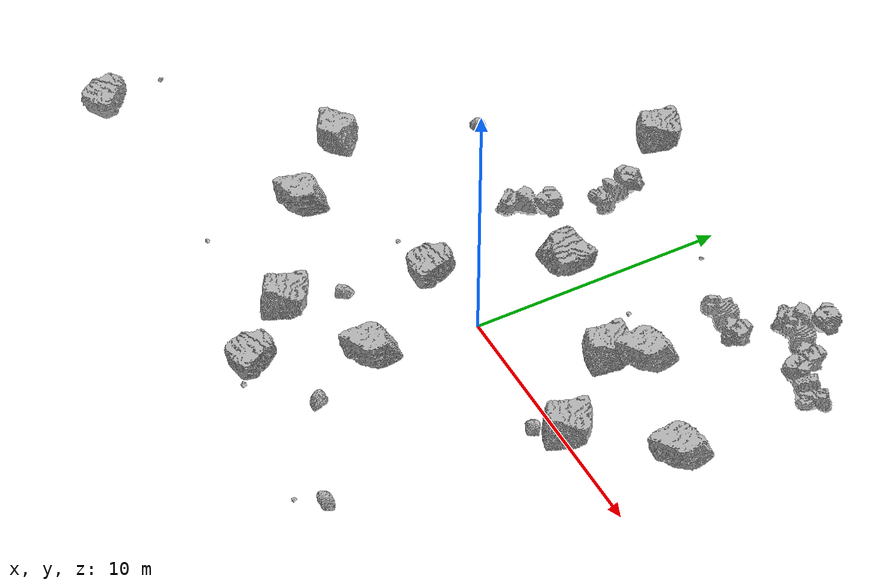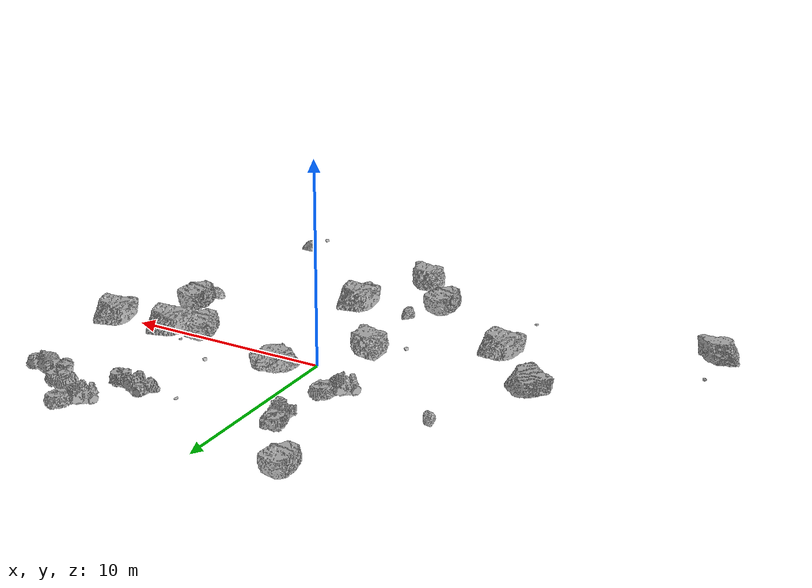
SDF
<sdf version="1.7">
 <world name="marsyard">
  <gravity>0 0 -9.81</gravity>
  <physics name="dart_physics" type="ignored">
   <max_step_size>0.003</max_step_size>
   <real_time_update_rate>333</real_time_update_rate>
   <real_time_factor>1.0</real_time_factor>
  </physics>
  <plugin filename="ignition-gazebo-physics-system" name="ignition::gazebo::systems::Physics"/>
  <plugin filename="ignition-gazebo-user-commands-system" name="ignition::gazebo::systems::UserCommands"/>
  <plugin filename="ignition-gazebo-scene-broadcaster-system" name="ignition::gazebo::systems::SceneBroadcaster"/>
  <plugin filename="ignition-gazebo-contact-system" name="ignition::gazebo::systems::Contact"/>
  <scene>
   <ambient>0.95 0.95 0.95 1</ambient>
   <background>0.70 0.70 0.70 1</background>
   <shadows>false</shadows>
  </scene>
  <light type="directional" name="sun">
   <cast_shadows>false</cast_shadows>
   <pose>0 0 30 0 0 0</pose>
   <diffuse>1 1 1 1</diffuse>
   <specular>0.15 0.15 0.15 1</specular>
   <direction>-0.35 0.1 -0.93</direction>
  </light>
  <model name="Rock_1">
   <static>true</static>
   <pose>0.4768 -4.6847 1.2409 0.0000 0.0000 2.4767</pose>
   <link name="link">
    <visual name="visual">
     <geometry><mesh><uri>package://rock_generator/rocks_ws/rock_1/meshes/rock_1.stl</uri></mesh></geometry>
    </visual>
   </link>
  </model>
  <model name="Rock_3">
   <static>true</static>
   <pose>1.9223 8.1948 1.3456 0.0000 0.0000 0.6590</pose>
   <link name="link">
    <visual name="visual">
     <geometry><mesh><uri>package://rock_generator/rocks_ws/rock_7/meshes/rock_7.stl</uri></mesh></geometry>
    </visual>
    <collision name="collision">
     <geometry><mesh><uri>package://rock_generator/rocks_ws/rock_7/meshes/rock_7.stl</uri></mesh></geometry>
    </collision>
   </link>
  </model>
  <model name="Rock_4">
   <static>true</static>
   <pose>1.4329 -7.1120 0.9479 0.0000 0.0000 2.9152</pose>
   <link name="link">
    <visual name="visual">
     <geometry><mesh><uri>package://rock_generator/rocks_ws/rock_3/meshes/rock_3.stl</uri></mesh></geometry>
    </visual>
    <collision name="collision">
     <geometry><mesh><uri>package://rock_generator/rocks_ws/rock_3/meshes/rock_3.stl</uri></mesh></geometry>
    </collision>
   </link>
  </model>
  <model name="Rock_6">
   <static>true</static>
   <pose>-0.2181 -9.1224 1.3719 0.0000 0.0000 -2.2296</pose>
   <link name="link">
    <visual name="visual">
     <geometry><mesh><uri>package://rock_generator/rocks_ws/rock_9/meshes/rock_9.stl</uri></mesh></geometry>
    </visual>
   </link>
  </model>
  <model name="Rock_7">
   <static>true</static>
   <pose>-2.7088 7.4044 1.1608 0.0000 0.0000 -1.2500</pose>
   <link name="link">
    <visual name="visual">
     <geometry><mesh><uri>package://rock_generator/rocks_ws/rock_2/meshes/rock_2.stl</uri></mesh></geometry>
    </visual>
    <collision name="collision">
     <geometry><mesh><uri>package://rock_generator/rocks_ws/rock_2/meshes/rock_2.stl</uri></mesh></geometry>
    </collision>
   </link>
  </model>
  <model name="Rock_9">
   <static>true</static>
   <pose>4.8801 7.4703 0.9232 0.0000 0.0000 3.0309</pose>
   <link name="link">
    <visual name="visual">
     <geometry><mesh><uri>package://rock_generator/rocks_ws/rock_2/meshes/rock_2.stl</uri></mesh></geometry>
    </visual>
   </link>
  </model>
  <model name="Rock_12">
   <static>true</static>
   <pose>-5.0294 10.6625 0.8152 0.0000 0.0000 0.4598</pose>
   <link name="link">
    <visual name="visual">
     <geometry><mesh><uri>package://rock_generator/rocks_ws/rock_1/meshes/rock_1.stl</uri></mesh></geometry>
    </visual>
    <collision name="collision">
     <geometry><mesh><uri>package://rock_generator/rocks_ws/rock_1/meshes/rock_1.stl</uri></mesh></geometry>
    </collision>
   </link>
  </model>
  <model name="Rock_16">
   <static>true</static>
   <pose>6.4309 -1.3958 1.5813 0.0000 0.0000 0.5819</pose>
   <link name="link">
    <visual name="visual">
     <geometry><mesh><uri>package://rock_generator/rocks_ws/rock_3/meshes/rock_3.stl</uri></mesh></geometry>
    </visual>
   </link>
  </model>
  <model name="Rock_17">
   <static>true</static>
   <pose>4.5118 2.6109 1.5480 0.0000 0.0000 0.5798</pose>
   <link name="link">
    <visual name="visual">
     <geometry><mesh><uri>package://rock_generator/rocks_ws/rock_1/meshes/rock_1.stl</uri></mesh></geometry>
    </visual>
    <collision name="collision">
     <geometry><mesh><uri>package://rock_generator/rocks_ws/rock_1/meshes/rock_1.stl</uri></mesh></geometry>
    </collision>
   </link>
  </model>
  <model name="Rock_19">
   <static>true</static>
   <pose>-2.3897 -4.1674 1.4174 0.0000 0.0000 -1.2123</pose>
   <link name="link">
    <visual name="visual">
     <geometry><mesh><uri>package://rock_generator/rocks_ws/rock_3/meshes/rock_3.stl</uri></mesh></geometry>
    </visual>
   </link>
  </model>
  <model name="Rock_22">
   <static>true</static>
   <pose>-8.3398 4.5760 1.1791 0.0000 0.0000 -0.2689</pose>
   <link name="link">
    <visual name="visual">
     <geometry><mesh><uri>package://rock_generator/rocks_ws/rock_3/meshes/rock_3.stl</uri></mesh></geometry>
    </visual>
    <collision name="collision">
     <geometry><mesh><uri>package://rock_generator/rocks_ws/rock_3/meshes/rock_3.stl</uri></mesh></geometry>
    </collision>
   </link>
  </model>
  <model name="Rock_25">
   <static>true</static>
   <pose>-2.1898 -0.7334 1.0219 0.0000 0.0000 -2.3976</pose>
   <link name="link">
    <visual name="visual">
     <geometry><mesh><uri>package://rock_generator/rocks_ws/rock_1/meshes/rock_1.stl</uri></mesh></geometry>
    </visual>
    <collision name="collision">
     <geometry><mesh><uri>package://rock_generator/rocks_ws/rock_1/meshes/rock_1.stl</uri></mesh></geometry>
    </collision>
   </link>
  </model>
  <model name="Rock_26">
   <static>true</static>
   <pose>5.5679 -9.9276 1.8166 0.0000 0.0000 0.4211</pose>
   <link name="link">
    <visual name="visual">
     <geometry><mesh><uri>package://rock_generator/rocks_ws/rock_9/meshes/rock_9.stl</uri></mesh></geometry>
    </visual>
    <collision name="collision">
     <geometry><mesh><uri>package://rock_generator/rocks_ws/rock_9/meshes/rock_9.stl</uri></mesh></geometry>
    </collision>
   </link>
  </model>
  <model name="Rock_27">
   <static>true</static>
   <pose>-7.8081 -3.4433 1.0914 0.0000 0.0000 2.2504</pose>
   <link name="link">
    <visual name="visual">
     <geometry><mesh><uri>package://rock_generator/rocks_ws/rock_1/meshes/rock_1.stl</uri></mesh></geometry>
    </visual>
    <collision name="collision">
     <geometry><mesh><uri>package://rock_generator/rocks_ws/rock_1/meshes/rock_1.stl</uri></mesh></geometry>
    </collision>
   </link>
  </model>
  <model name="Rock_30">
   <static>true</static>
   <pose>-0.1203 3.8290 1.4392 0.0000 0.0000 -0.7985</pose>
   <link name="link">
    <visual name="visual">
     <geometry><mesh><uri>package://rock_generator/rocks_ws/rock_1/meshes/rock_1.stl</uri></mesh></geometry>
    </visual>
    <collision name="collision">
     <geometry><mesh><uri>package://rock_generator/rocks_ws/rock_1/meshes/rock_1.stl</uri></mesh></geometry>
    </collision>
   </link>
  </model>
  <model name="Rock_31">
   <static>true</static>
   <pose>3.1348 4.3760 1.3899 0.0000 0.0000 0.2756</pose>
   <link name="link">
    <visual name="visual">
     <geometry><mesh><uri>package://rock_generator/rocks_ws/rock_9/meshes/rock_9.stl</uri></mesh></geometry>
    </visual>
    <collision name="collision">
     <geometry><mesh><uri>package://rock_generator/rocks_ws/rock_9/meshes/rock_9.stl</uri></mesh></geometry>
    </collision>
   </link>
  </model>
  <model name="Rock_32">
   <static>true</static>
   <pose>5.6975 3.3626 1.9316 0.0000 0.0000 2.5598</pose>
   <link name="link">
    <visual name="visual">
     <geometry><mesh><uri>package://rock_generator/rocks_ws/rock_1/meshes/rock_1.stl</uri></mesh></geometry>
    </visual>
    <collision name="collision">
     <geometry><mesh><uri>package://rock_generator/rocks_ws/rock_1/meshes/rock_1.stl</uri></mesh></geometry>
    </collision>
   </link>
  </model>
  <model name="Rock_34">
   <static>true</static>
   <pose>7.1700 9.1422 1.0060 0.0000 0.0000 2.8301</pose>
   <link name="link">
    <visual name="visual">
     <geometry><mesh><uri>package://rock_generator/rocks_ws/rock_2/meshes/rock_2.stl</uri></mesh></geometry>
    </visual>
   </link>
  </model>
  <model name="Rock_37">
   <static>true</static>
   <pose>-16.7717 -5.1917 1.1791 0.0000 0.0000 2.7179</pose>
   <link name="link">
    <visual name="visual">
     <geometry><mesh><uri>package://rock_generator/rocks_ws/rock_9/meshes/rock_9.stl</uri></mesh></geometry>
    </visual>
    <collision name="collision">
     <geometry><mesh><uri>package://rock_generator/rocks_ws/rock_9/meshes/rock_9.stl</uri></mesh></geometry>
    </collision>
   </link>
  </model>
  <model name="Rock_40">
   <static>true</static>
   <pose>4.5953 4.1322 1.9544 0.0000 0.0000 -1.5503</pose>
   <link name="link">
    <visual name="visual">
     <geometry><mesh><uri>package://rock_generator/rocks_ws/rock_7/meshes/rock_7.stl</uri></mesh></geometry>
    </visual>
    <collision name="collision">
     <geometry><mesh><uri>package://rock_generator/rocks_ws/rock_7/meshes/rock_7.stl</uri></mesh></geometry>
    </collision>
   </link>
  </model>
  <model name="Rock_41">
   <static>true</static>
   <pose>6.0540 -9.0231 1.5440 0.0000 0.0000 -2.1726</pose>
   <link name="link">
    <visual name="visual">
     <geometry><mesh><uri>package://rock_generator/rocks_ws/rock_3/meshes/rock_3.stl</uri></mesh></geometry>
    </visual>
    <collision name="collision">
     <geometry><mesh><uri>package://rock_generator/rocks_ws/rock_3/meshes/rock_3.stl</uri></mesh></geometry>
    </collision>
   </link>
  </model>
  <model name="Rock_43">
   <static>true</static>
   <pose>-3.3193 -6.0659 1.2158 0.0000 0.0000 0.3115</pose>
   <link name="link">
    <visual name="visual">
     <geometry><mesh><uri>package://rock_generator/rocks_ws/rock_1/meshes/rock_1.stl</uri></mesh></geometry>
    </visual>
    <collision name="collision">
     <geometry><mesh><uri>package://rock_generator/rocks_ws/rock_1/meshes/rock_1.stl</uri></mesh></geometry>
    </collision>
   </link>
  </model>
  <model name="Rock_44">
   <static>true</static>
   <pose>-7.6563 -7.2283 1.0274 0.0000 0.0000 -0.3936</pose>
   <link name="link">
    <visual name="visual">
     <geometry><mesh><uri>package://rock_generator/rocks_ws/rock_7/meshes/rock_7.stl</uri></mesh></geometry>
    </visual>
   </link>
  </model>
  <model name="Rock_45">
   <static>true</static>
   <pose>6.1671 10.0291 0.9648 0.0000 0.0000 -2.1048</pose>
   <link name="link">
    <visual name="visual">
     <geometry><mesh><uri>package://rock_generator/rocks_ws/rock_2/meshes/rock_2.stl</uri></mesh></geometry>
    </visual>
    <collision name="collision">
     <geometry><mesh><uri>package://rock_generator/rocks_ws/rock_2/meshes/rock_2.stl</uri></mesh></geometry>
    </collision>
   </link>
  </model>
  <model name="Rock_47">
   <static>true</static>
   <pose>-1.0073 -8.3970 1.2720 0.0000 0.0000 -2.2010</pose>
   <link name="link">
    <visual name="visual">
     <geometry><mesh><uri>package://rock_generator/rocks_ws/rock_1/meshes/rock_1.stl</uri></mesh></geometry>
    </visual>
    <collision name="collision">
     <geometry><mesh><uri>package://rock_generator/rocks_ws/rock_1/meshes/rock_1.stl</uri></mesh></geometry>
    </collision>
   </link>
  </model>
  <model name="Rock_51">
   <static>true</static>
   <pose>-16.3461 -7.6041 1.0972 0.0000 0.0000 -1.8606</pose>
   <link name="link">
    <visual name="visual">
     <geometry><mesh><uri>package://rock_generator/rocks_ws/rock_1/meshes/rock_1.stl</uri></mesh></geometry>
    </visual>
    <collision name="collision">
     <geometry><mesh><uri>package://rock_generator/rocks_ws/rock_1/meshes/rock_1.stl</uri></mesh></geometry>
    </collision>
   </link>
  </model>
  <model name="Rock_52">
   <static>true</static>
   <pose>8.7272 8.1372 1.0847 0.0000 0.0000 -0.1818</pose>
   <link name="link">
    <visual name="visual">
     <geometry><mesh><uri>package://rock_generator/rocks_ws/rock_2/meshes/rock_2.stl</uri></mesh></geometry>
    </visual>
    <collision name="collision">
     <geometry><mesh><uri>package://rock_generator/rocks_ws/rock_2/meshes/rock_2.stl</uri></mesh></geometry>
    </collision>
   </link>
  </model>
  <model name="Rock_55">
   <static>true</static>
   <pose>-3.4835 4.1578 1.2499 0.0000 0.0000 -2.0982</pose>
   <link name="link">
    <visual name="visual">
     <geometry><mesh><uri>package://rock_generator/rocks_ws/rock_2/meshes/rock_2.stl</uri></mesh></geometry>
    </visual>
    <collision name="collision">
     <geometry><mesh><uri>package://rock_generator/rocks_ws/rock_2/meshes/rock_2.stl</uri></mesh></geometry>
    </collision>
   </link>
  </model>
  <model name="Rock_56">
   <static>true</static>
   <pose>-10.5706 -0.6522 0.9931 0.0000 0.0000 1.6009</pose>
   <link name="link">
    <visual name="visual">
     <geometry><mesh><uri>package://rock_generator/rocks_ws/rock_1/meshes/rock_1.stl</uri></mesh></geometry>
    </visual>
    <collision name="collision">
     <geometry><mesh><uri>package://rock_generator/rocks_ws/rock_1/meshes/rock_1.stl</uri></mesh></geometry>
    </collision>
   </link>
  </model>
  <model name="Rock_57">
   <static>true</static>
   <pose>6.8273 -0.2985 1.4503 0.0000 0.0000 0.3477</pose>
   <link name="link">
    <visual name="visual">
     <geometry><mesh><uri>package://rock_generator/rocks_ws/rock_1/meshes/rock_1.stl</uri></mesh></geometry>
    </visual>
    <collision name="collision">
     <geometry><mesh><uri>package://rock_generator/rocks_ws/rock_1/meshes/rock_1.stl</uri></mesh></geometry>
    </collision>
   </link>
  </model>
  <model name="Rock_60">
   <static>true</static>
   <pose>-4.0376 -1.1692 1.3496 0.0000 0.0000 0.2251</pose>
   <link name="link">
    <visual name="visual">
     <geometry><mesh><uri>package://rock_generator/rocks_ws/rock_9/meshes/rock_9.stl</uri></mesh></geometry>
    </visual>
    <collision name="collision">
     <geometry><mesh><uri>package://rock_generator/rocks_ws/rock_9/meshes/rock_9.stl</uri></mesh></geometry>
    </collision>
   </link>
  </model>
  <model name="Rock_63">
   <static>true</static>
   <pose>9.5086 2.4170 1.2645 0.0000 0.0000 2.5778</pose>
   <link name="link">
    <visual name="visual">
     <geometry><mesh><uri>package://rock_generator/rocks_ws/rock_1/meshes/rock_1.stl</uri></mesh></geometry>
    </visual>
   </link>
  </model>
 </world>
</sdf>
